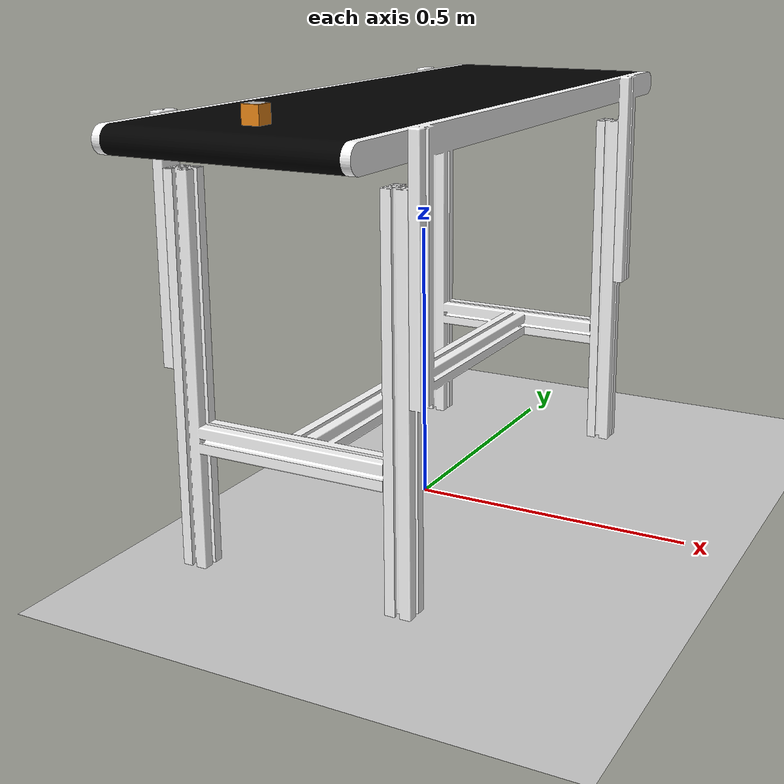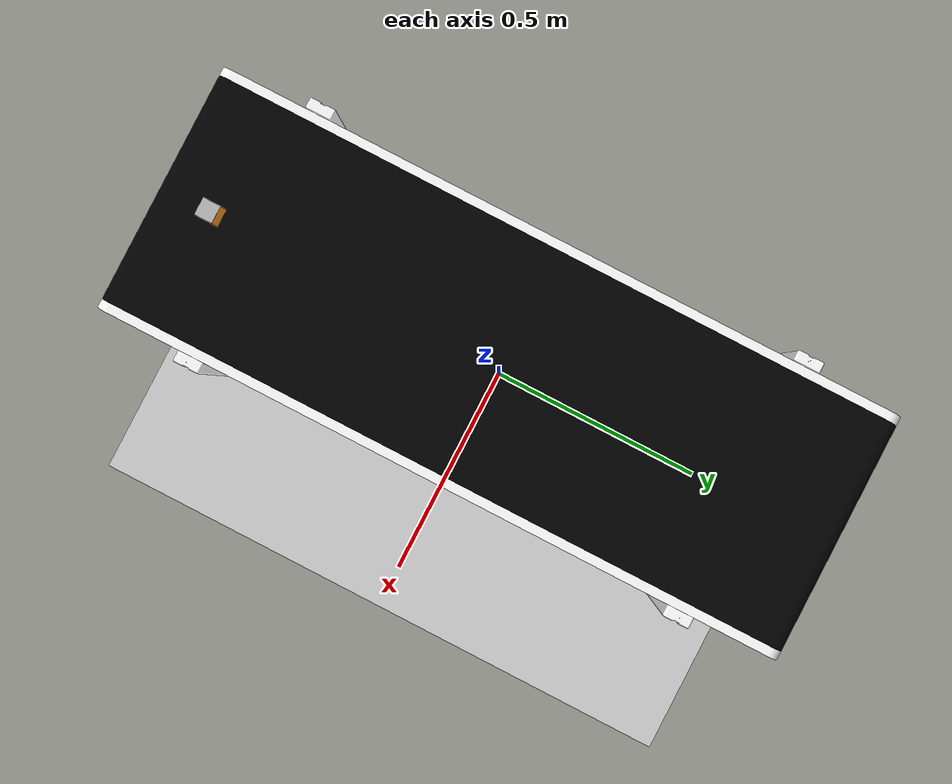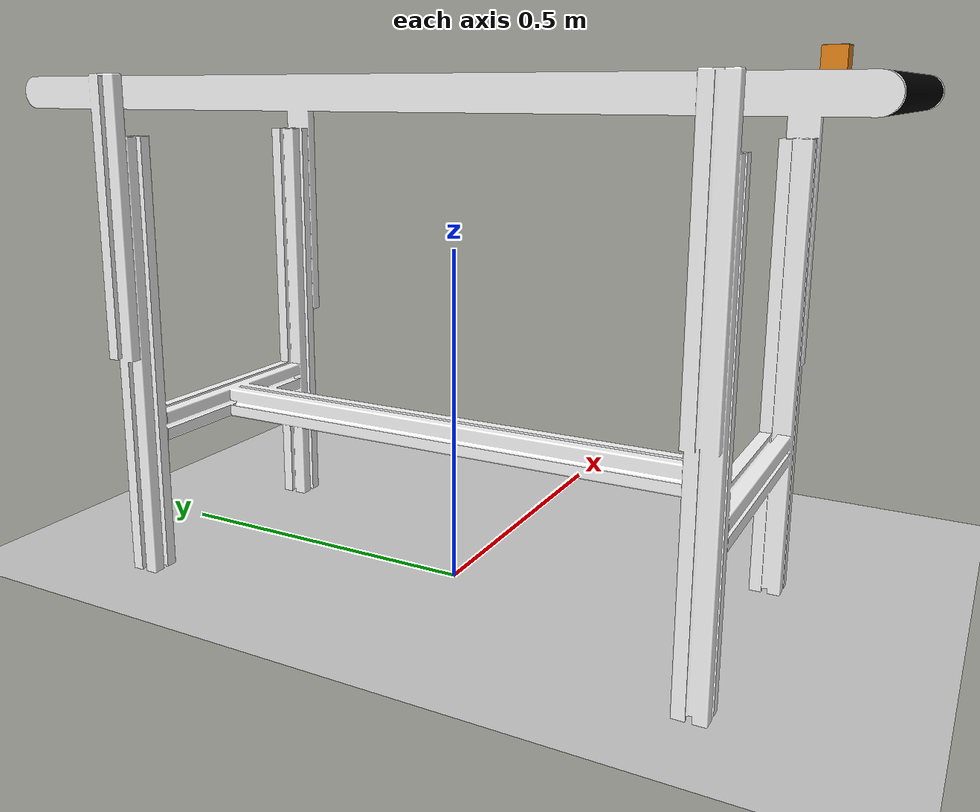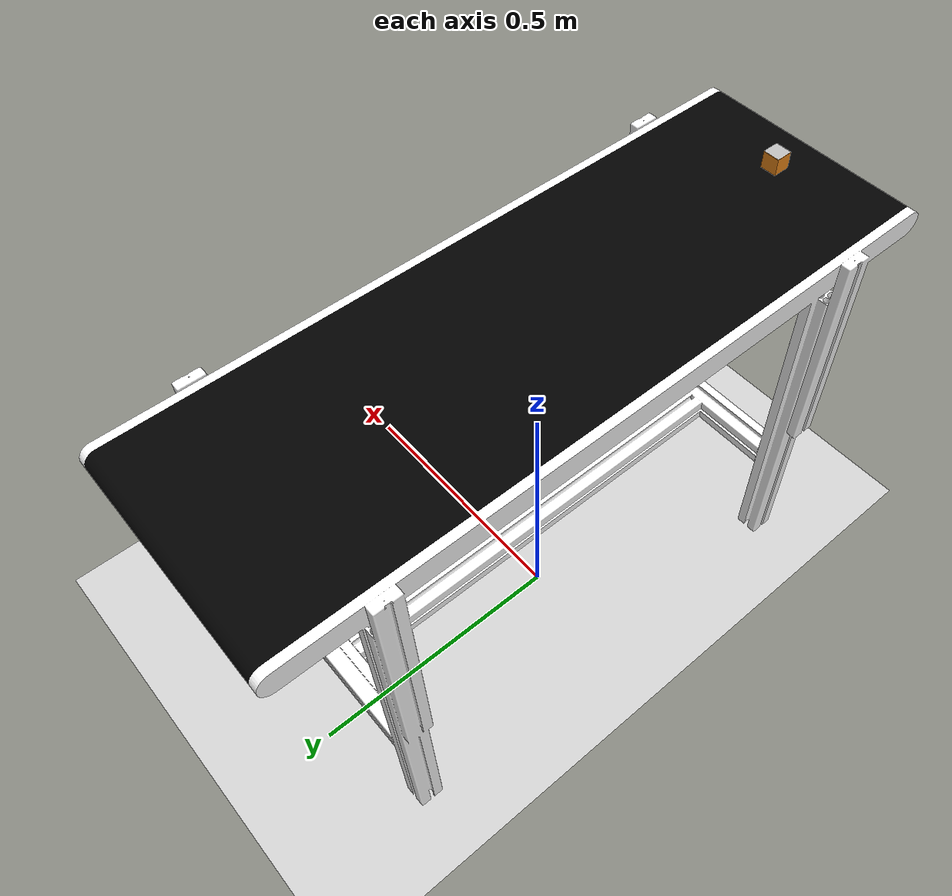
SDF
<sdf version="1.7">
 <world name="default">
  <gravity>0 0 -9.8</gravity>
  <model name="ground_plane">
   <static>1</static>
   <link name="link">
    <collision name="collision">
     <geometry><plane><normal>0 0 1</normal><size>100 100</size></plane></geometry>
     <surface><friction><ode><mu>100</mu><mu2>50</mu2></ode></friction></surface>
    </collision>
    <visual name="visual">
     <cast_shadows>0</cast_shadows>
     <geometry><plane><normal>0 0 1</normal><size>100 100</size></plane></geometry>
     <material>
      <script><uri>file://media/materials/scripts/gazebo.material</uri><name>Gazebo/Grey</name></script>
     </material>
    </visual>
   </link>
  </model>
  <light name="sun" type="directional">
   <pose>0 0 10 0 -0 0</pose>
   <diffuse>0.8 0.8 0.8 1</diffuse>
   <specular>0.2 0.2 0.2 1</specular>
   <attenuation>
    <range>1000</range>
    <constant>0.9</constant>
    <linear>0.01</linear>
    <quadratic>0.001</quadratic>
   </attenuation>
   <direction>-0.5 0.1 -0.9</direction>
   <spot><inner_angle>0</inner_angle><outer_angle>0</outer_angle><falloff>0</falloff></spot>
  </light>
  <scene><shadows>0</shadows><ambient>0.4 0.4 0.4 1</ambient><background>0.7 0.7 0.7 1</background></scene>
  <model name="conveyor_belt">
   <model name="conveyorbelt_fixed">
    <static>1</static>
    <link name="belt_visual">
     <visual name="visual">
      <geometry>
       <mesh><scale>1 1 1</scale><uri>model://conveyor_belt/meshes/conveyor_belt.dae</uri></mesh>
      </geometry>
     </visual>
     <collision name="collision">
      <geometry>
       <mesh><scale>1 1 1</scale><uri>model://conveyor_belt/meshes/conveyor_belt.dae</uri></mesh>
      </geometry>
      <origin xyz="0.0 0.0 0" rpy="0.0 0.0 0.0"/>
     </collision>
    </link>
   </model>
   <model name="conveyorbelt_moving">
    <allow_auto_disable>0</allow_auto_disable>
    <static>0</static>
    <pose>0 0 0.741 0 -0 0</pose>
    <link name="belt_moving">
     <inertial>
      <mass>100</mass>
      <inertia><ixx>0</ixx><ixy>0</ixy><ixz>0</ixz><iyy>0</iyy><iyz>0</iyz><izz>0</izz></inertia>
     </inertial>
     <collision name="belt_collision">
      <geometry><box><size>0.425 1.2 1e-05</size></box></geometry>
      <surface>
       <friction>
        <ode><mu>100</mu><mu2>100</mu2></ode>
        <torsional><coefficient>1000</coefficient><patch_radius>0.1</patch_radius></torsional>
       </friction>
      </surface>
     </collision>
    </link>
   </model>
   <joint name="belt_joint" type="prismatic">
    <parent>conveyorbelt_fixed::belt_visual</parent>
    <child>conveyorbelt_moving::belt_moving</child>
    <axis>
     <xyz expressed_in="__model__">0 1 0</xyz>
     <limit><lower>0</lower><upper>0.01</upper></limit>
     <dynamics><spring_reference>0</spring_reference><spring_stiffness>0</spring_stiffness></dynamics>
    </axis>
   </joint>
   <plugin name="ros2_conveyorbelt_plugin" filename="libros2_conveyorbelt_plugin.so">
    <max_velocity>1.0</max_velocity>
    <publish_rate>1000</publish_rate>
   </plugin>
  </model>
  <magnetic_field>6e-06 2.3e-05 -4.2e-05</magnetic_field>
  <atmosphere type="adiabatic"/>
  <physics type="ode">
   <max_step_size>0.001</max_step_size>
   <real_time_factor>1</real_time_factor>
   <real_time_update_rate>1000</real_time_update_rate>
  </physics>
  <audio><device>default</device></audio>
  <spherical_coordinates>
   <surface_model>EARTH_WGS84</surface_model>
   <latitude_deg>0</latitude_deg>
   <longitude_deg>0</longitude_deg>
   <elevation>0</elevation>
   <heading_deg>0</heading_deg>
  </spherical_coordinates>
  <model name="box">
   <link name="box">
    <visual name="box_visual">
     <geometry><box><size>0.03 0.03 0.03</size></box></geometry>
     <material>
      <script><uri>file://media/materials/scripts/gazebo.material</uri><name>Gazebo/Orange</name></script>
     </material>
    </visual>
    <collision name="box_collision">
     <geometry><box><size>0.03 0.03 0.03</size></box></geometry>
     <surface><friction><ode><mu>100</mu><mu2>100</mu2></ode></friction></surface>
    </collision>
    <inertial>
     <mass>0.1</mass>
     <inertia><ixx>1.5e-05</ixx><iyy>1.5e-05</iyy><izz>1.5e-05</izz><ixy>0</ixy><ixz>0</ixz><iyz>0</iyz></inertia>
    </inertial>
    <visual name="aruco_marker_visual">
     <pose>0 0 0.0155 0 -0 0</pose>
     <geometry><box><size>0.03 0.03 0.0001</size></box></geometry>
     <material>
      <script>
       <uri>model://aruco_visual_marker_1/materials/scripts</uri>
       <uri>model://aruco_visual_marker_1/materials/textures</uri>
       <name>ArucoVisualMarker1/Marker</name>
      </script>
     </material>
    </visual>
    <collision name="aruco_marker_collision">
     <pose>0 0 0.0155 0 -0 0</pose>
     <geometry><box><size>0.03 0.03 0.0001</size></box></geometry>
    </collision>
   </link>
   <static>0</static>
   <pose>-1e-06 -0.499999 0.756005 -0 -0 -3.1e-05</pose>
   <gazebo reference="box">
    <material>Gazebo/Orange</material>
    <mu1>100.0</mu1>
    <mu2>100.0</mu2>
    <selfCollide>0</selfCollide>
   </gazebo>
  </model>
 </world>
</sdf>
